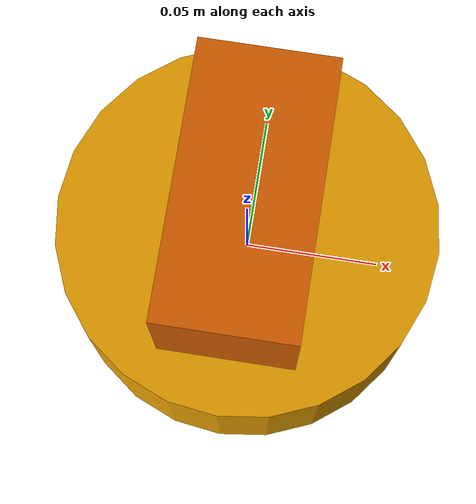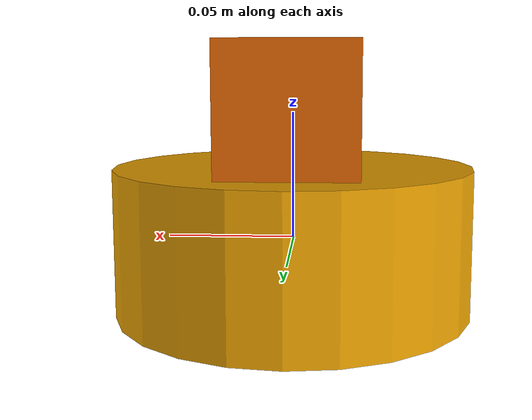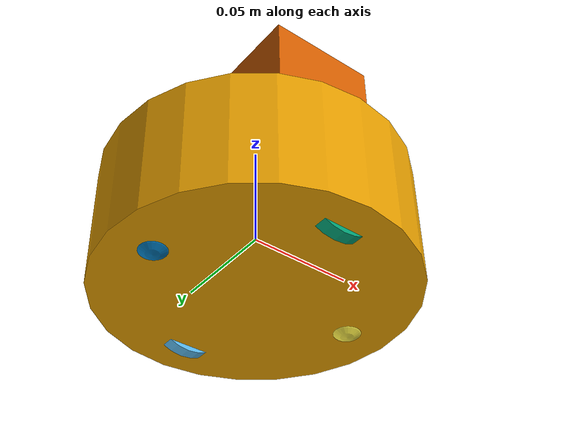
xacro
<?xml version="1.0"?>

<robot xmlns:xacro="http://www.ros.org/wiki/xacro" name="my_robot">

    <xacro:include filename="$(find tutorial)/urdf/arm.xacro" />
    <xacro:include filename="$(find tutorial)/urdf/caster_wheel.xacro" />
    <xacro:include filename="$(find tutorial)/urdf/head.xacro" />

    <link name="base_link">
        <visual>
            <geometry>
                <cylinder length="0.0577" radius="0.0704"/>
            </geometry>
        </visual>
        <collision>
            <geometry>
                <cylinder length="0.0577" radius="0.0704"/>
            </geometry>
        </collision>
        <inertial>
            <mass value="0.6"/>
            <inertia ixx="${1/12*0.6*(3*0.0704*0.0704+0.0577*0.0577)}" ixy="0" ixz="0" iyy="${1/12*0.6*(3*0.0704*0.0704+0.0577*0.0577)}" iyz="0" izz="${1/2*0.6*0.0704*0.0704}"/>
        </inertial>
    </link>

    <xacro:arm prefix="right" length=".0059" radius=".021" reflect="0.0527" />
    <xacro:arm prefix="left" length=".0059" radius=".021" reflect="-0.0527" />
    <xacro:caster_wheel prefix="front" radius=".021" xoffset="0.050" zoffset="-0.0211" />
    <xacro:caster_wheel prefix="rear" radius=".021" xoffset="-0.050" zoffset="-0.0211" />
    <xacro:head />

    <!-- Add ROS plugin so we can interact with our robot -->
    <gazebo>
        <plugin name="gazebo_ros_control" filename="libgazebo_ros_control.so">
            <robotNamespace>/</robotNamespace>
        </plugin>
    </gazebo>
</robot>

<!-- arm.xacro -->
<robot xmlns:xacro="http://www.ros.org/wiki/xacro" name="my_robot">
<xacro:macro name="arm" params="prefix radius length reflect">

    <!-- rpy (roll pitch yaw) describes rotation in radians -->
    <!-- xyz describes translation in meters -->
    <link name="${prefix}_arm">
        <visual>
            <origin rpy="0 0 0" xyz="0 0 0"/> <!-- set the origin to 0 to recenter the link to the child_frame -->
            <geometry>
                <cylinder length="${length}" radius="${radius}"/>
            </geometry>
        </visual>
        <collision>
            <origin rpy="0 0 0" xyz="0 0 0"/> <!-- set the origin to 0 to recenter the link to the child_frame -->
            <geometry>
                <cylinder length="${length}" radius="${radius}"/>
            </geometry>
        </collision>
        <inertial>
            <origin rpy="0 0 0" xyz="0 0 0"/> <!-- set the origin to 0 to recenter the link to the child_frame -->
            <mass value="0.1"/>
            <inertia ixx="${1/12*0.1*(3*radius*radius+length*length)}" ixy="0.0" ixz="0.0" iyy="${1/12*0.1*(3*radius*radius+length*length)}" iyz="0.0" izz="${1/2*0.1*radius*radius}"/>
        </inertial>
    </link>

    <joint name="base_to_${prefix}_arm" type="continuous">
        <axis xyz="0 0 1"/>
        <parent link="base_link"/>
        <child link="${prefix}_arm"/>
        <origin rpy="1.5708 0 0" xyz="0 ${reflect} -0.0102"/> <!-- move the child_frame with respect to parent_frame -->
        <limit effort="30" velocity="1.0"/>
    </joint>

    <transmission name="${prefix}_arm_transmission">
        <type>transmission_interface/SimpleTransmission</type>
        <actuator name="$${prefix}_motor">
            <mechanicalReduction>1</mechanicalReduction>
        </actuator>
        <joint name="base_to_${prefix}_arm">
            <hardwareInterface>hardware_interface/VelocityJointInterface</hardwareInterface>
        </joint>
    </transmission>

</xacro:macro>
</robot>

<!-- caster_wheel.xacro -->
<robot xmlns:xacro="http://www.ros.org/wiki/xacro" name="my_robot">
<xacro:macro name="caster_wheel" params="prefix radius xoffset zoffset">

    <!-- rpy (roll pitch yaw) describes rotation in radians -->
    <!-- xyz describes translation in meters -->
    <link name="${prefix}_caster_wheel">
        <visual>
            <geometry>
                <sphere radius="0.010"/>
            </geometry>
        </visual>
        <collision>
            <geometry>
                <sphere radius="0.010"/>
            </geometry>
        </collision>
        <inertial>
            <mass value="0.1"/>
            <inertia ixx="${2/5*0.1*radius*radius}" ixy="0" ixz="0" iyy="${2/5*0.1*radius*radius}" iyz="0" izz="${2/5*0.1*radius*radius}"/>
        </inertial>
    </link>

    <joint name="base_to_${prefix}_caster_wheel" type="fixed">
        <parent link="base_link"/>
        <child link="${prefix}_caster_wheel"/>
        <origin rpy="0 0 0" xyz="${xoffset} 0 ${zoffset}"/> <!-- move the child_frame with respect to parent_frame -->
    </joint>

</xacro:macro>
</robot>

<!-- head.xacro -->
<robot xmlns:xacro="http://www.ros.org/wiki/xacro" name="my_robot">
<xacro:macro name="head">

    <link name="head_link">
        <visual>
            <origin rpy="0 0 0" xyz="0 0 0"/>
            <geometry>
                <box size = "0.05 0.1 0.05" />
            </geometry>
        </visual>
        <collision>
            <origin rpy="0 0 0" xyz="0 0 0"/>
            <geometry>
                <box size = "0.05 0.1 0.05" />
            </geometry>
        </collision>
        <inertial>
            <origin rpy="0 0 0" xyz="0 0 0"/>
            <mass value="0.1"/>
            <inertia ixx="0.03" ixy="0.0" ixz="0.0" iyy="0.03" iyz="0.0" izz="0.03"/>
        </inertial>
    </link>

    <joint name="base_to_head" type="fixed">
        <parent link="base_link"/>
        <child link="head_link"/>
        <origin rpy="0 0 0" xyz="0 0 0.0515"/> <!-- moves the child_frame with respect to parent_frame -->
    </joint>

    <gazebo reference="head_link">
    <sensor type="camera" name="camera1">
      <update_rate>30.0</update_rate>
      <camera name="camera">
        <horizontal_fov>1.3962634</horizontal_fov>
        <image>
          <width>800</width>
          <height>800</height>
          <format>R8G8B8</format>
        </image>
        <clip>
          <near>0.02</near>
          <far>300</far>
        </clip>
        <noise>
          <type>gaussian</type>
          <!-- Noise is sampled independently per pixel on each frame.
               That pixel's noise value is added to each of its color
               channels, which at that point lie in the range [0,1]. -->
          <mean>0.0</mean>
          <stddev>0.007</stddev>
        </noise>
      </camera>
      <plugin name="camera_controller" filename="libgazebo_ros_camera.so">
        <alwaysOn>true</alwaysOn>
        <updateRate>0.0</updateRate>
        <cameraName>camera</cameraName>
        <imageTopicName>image_raw</imageTopicName>
        <cameraInfoTopicName>camera_info</cameraInfoTopicName>
        <frameName>head_link</frameName>
        <hackBaseline>0.07</hackBaseline>
        <distortionK1>0.0</distortionK1>
        <distortionK2>0.0</distortionK2>
        <distortionK3>0.0</distortionK3>
        <distortionT1>0.0</distortionT1>
        <distortionT2>0.0</distortionT2>
      </plugin>
    </sensor>
  </gazebo>
</xacro:macro>
</robot>
